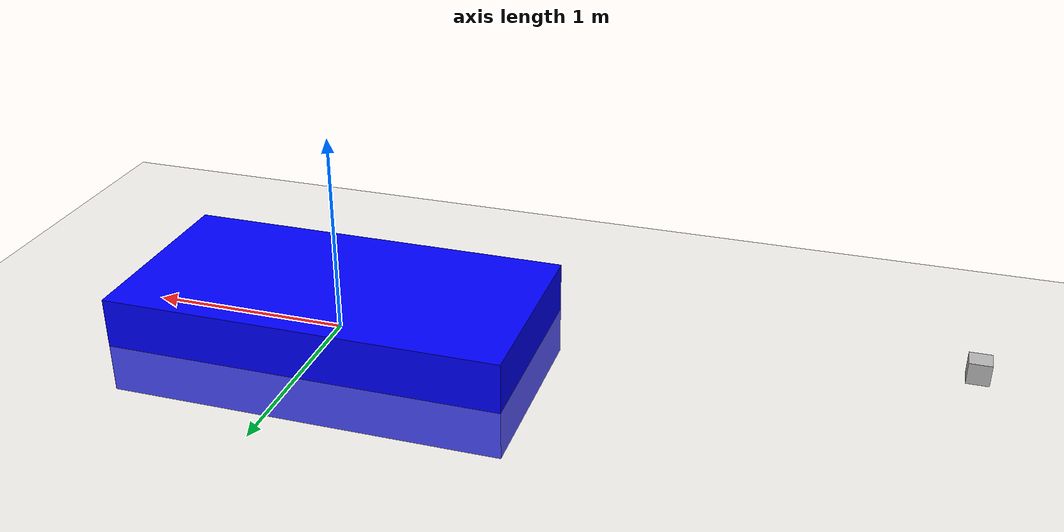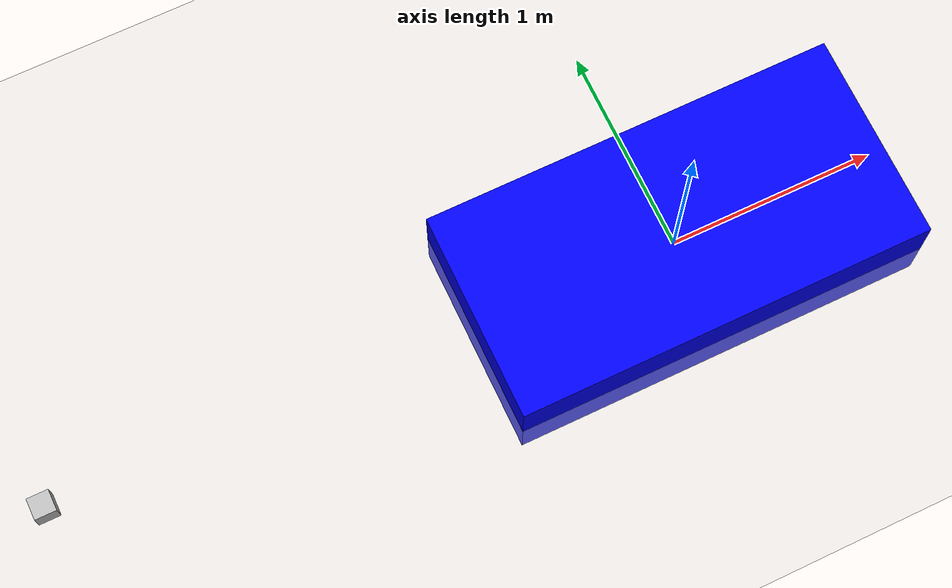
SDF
<?xml version="1.0" ?>
<sdf version="1.10">
  <world name="default">
    <physics name="1ms" type="ignored">
        <max_step_size>0.001</max_step_size>
        <real_time_factor>1.0</real_time_factor>
    </physics>
    <plugin
        filename="gz-sim-physics-system"
        name="gz::sim::systems::Physics">
    </plugin>
    <plugin
        filename="gz-sim-user-commands-system"
        name="gz::sim::systems::UserCommands">
    </plugin>
    <plugin
        filename="gz-sim-scene-broadcaster-system"
        name="gz::sim::systems::SceneBroadcaster">
    </plugin>
    <plugin name='gz::sim::systems::Sensors' filename='gz-sim-sensors-system'>
      <render_engine>ogre</render_engine>
    </plugin>

    <light type="directional" name="sun">
        <cast_shadows>true</cast_shadows>
        <pose>0 0 10 0 0 0</pose>
        <diffuse>0.8 0.8 0.8 1</diffuse>
        <specular>0.2 0.2 0.2 1</specular>
        <attenuation>
            <range>1000</range>
            <constant>0.9</constant>
            <linear>0.01</linear>
            <quadratic>0.001</quadratic>
        </attenuation>
        <direction>-0.5 0.1 -0.9</direction>
    </light>

    <model name="ground_plane">
      <static>true</static>
      <link name="link">
          <collision name="collision">
          <geometry>
              <plane>
              <normal>0 0 1</normal>
              </plane>
          </geometry>
          </collision>
          <visual name="visual">
          <geometry>
              <plane>
              <normal>0 0 1</normal>
              <size>1000 1000</size>
              </plane>
          </geometry>
          <material>
              <ambient>0.8 0.8 0.8 1</ambient>
              <diffuse>0.8 0.8 0.8 1</diffuse>
              <specular>0.8 0.8 0.8 1</specular>
          </material>
          </visual>
      </link>

    </model>

    <!--
      The plugin should be attached to a model (defined inside a model)
      The model must contain a link that contains a visual tag
      The visual component must include a material tag
    -->
    <model name='box'>
      <static>false</static>
      <allow_auto_disable>false</allow_auto_disable>
      <pose relative_to='world'>0 0 0 0 0 0</pose>
      <link name='box_link'>
      <inertial> <!--inertial properties of the link mass, inertia matix-->
          <mass>1.14395</mass>
          <inertia>
              <ixx>0.095329</ixx>
              <ixy>0</ixy>
              <ixz>0</ixz>
              <iyy>0.381317</iyy>
              <iyz>0</iyz>
              <izz>0.476646</izz>
          </inertia>
      </inertial>
      <visual name='visual1'>
        <geometry>
            <box>
                <size>2.0 1.0 0.5</size>
            </box>
        </geometry>
        <!--let's add color to our link-->
        <material>
            <ambient>0.0 0.0 1.0 1</ambient>
            <diffuse>0.0 0.0 1.0 1</diffuse>
            <specular>0.0 0.0 1.0 1</specular>
        </material>
      </visual>
      <collision name='collision'>
        <geometry>
            <box>
                <size>2.0 1.0 0.5</size>
            </box>
        </geometry>
      </collision>
      </link>

      <plugin name="FireflyLED" filename="libFireflyLED.so">
        <model_name>box</model_name>
        <link_name>box_link</link_name>
        <visual_name>visual1</visual_name>
      </plugin>
    </model>

    <model name="camera">
    <pose>-3 0 0.3 0 0 0</pose>
    <link name="link">
      <inertial>
        <mass>0</mass>
        <inertia>
          <ixx>0.000166667</ixx>
          <iyy>0.000166667</iyy>
          <izz>0.000166667</izz>
        </inertia>
      </inertial>
      <visual name="visual">
        <geometry>
          <box>
            <size>0.1 0.1 0.1</size>
          </box>
        </geometry>
      </visual>
      <sensor name="camera" type="wideanglecamera">
        <camera>
          <horizontal_fov>1.047</horizontal_fov>
          <image>
            <width>320</width>
            <height>240</height>
          </image>
          <clip>
            <near>0.1</near>
            <far>100</far>
          </clip>
        </camera>
        <always_on>1</always_on>
        <update_rate>30</update_rate>
        <visualize>true</visualize>
        <topic>camera_test</topic>

      </sensor>
      <sensor name='gpu_lidar' type='gpu_lidar'>
          <pose>0 0 0 0 0 0</pose>
          <topic>lidar</topic>
          <update_rate>10</update_rate>
          <enable_metrics>false</enable_metrics>
          <lidar>
            <scan>
              <horizontal>
                <samples>320</samples>
                <resolution>1</resolution>
                <min_angle>0</min_angle>
                <max_angle>6.28</max_angle>
              </horizontal>
              <vertical>
                <samples>5</samples>
                <min_angle>-0.01</min_angle>
                <max_angle>0</max_angle>
                <resolution>1</resolution>
              </vertical>
            </scan>
            <range>
              <min>0.080000000000000002</min>
              <max>10</max>
              <resolution>0.01</resolution>
            </range>
            <noise>
              <type>none</type>
              <mean>0</mean>
              <stddev>0</stddev>
            </noise>
            <visibility_mask>4294967295</visibility_mask>
          </lidar>
        </sensor>
    </link>
  </model>

  </world>
</sdf>
